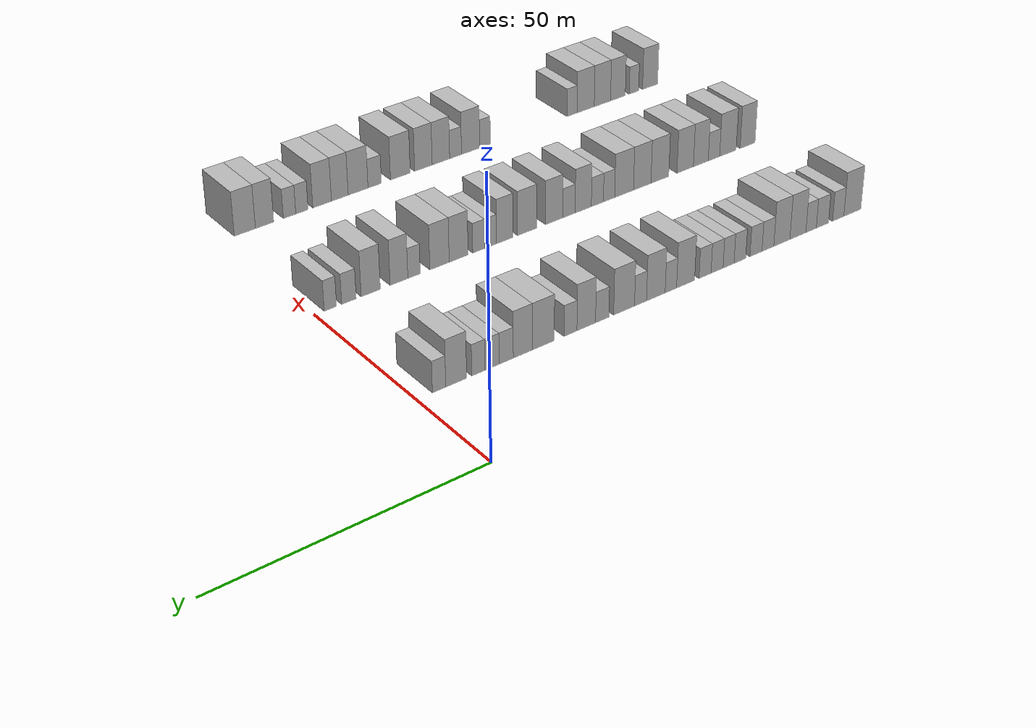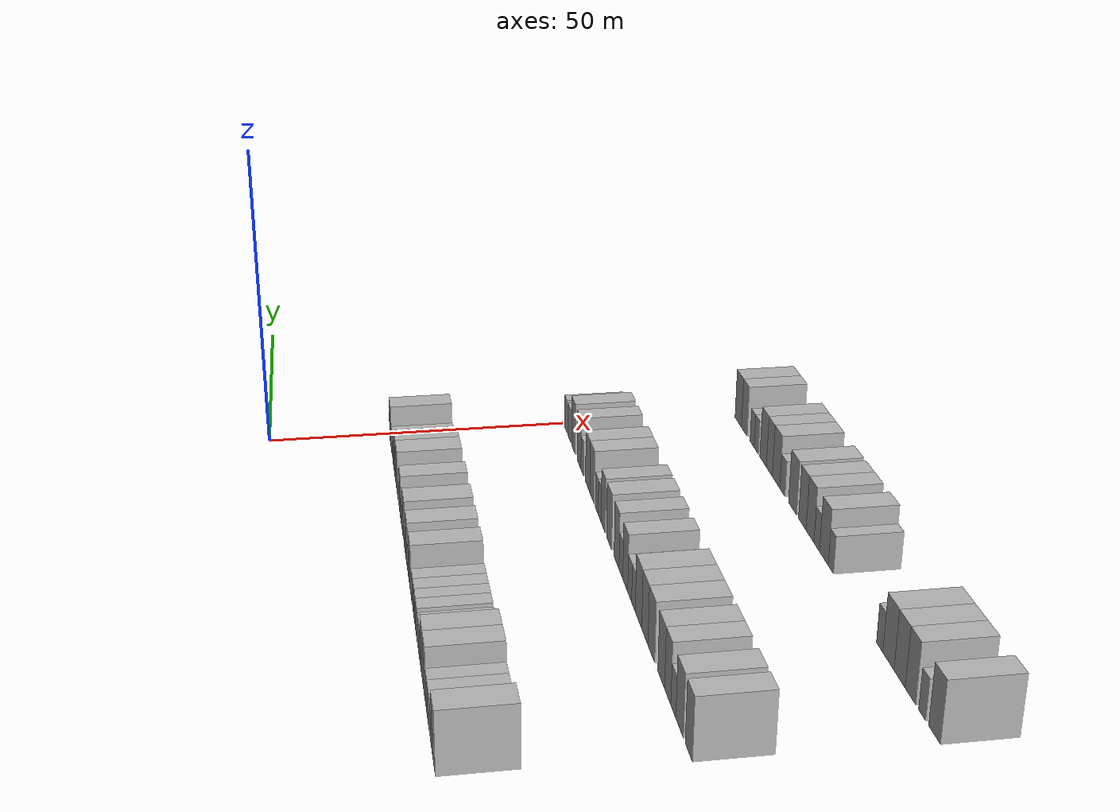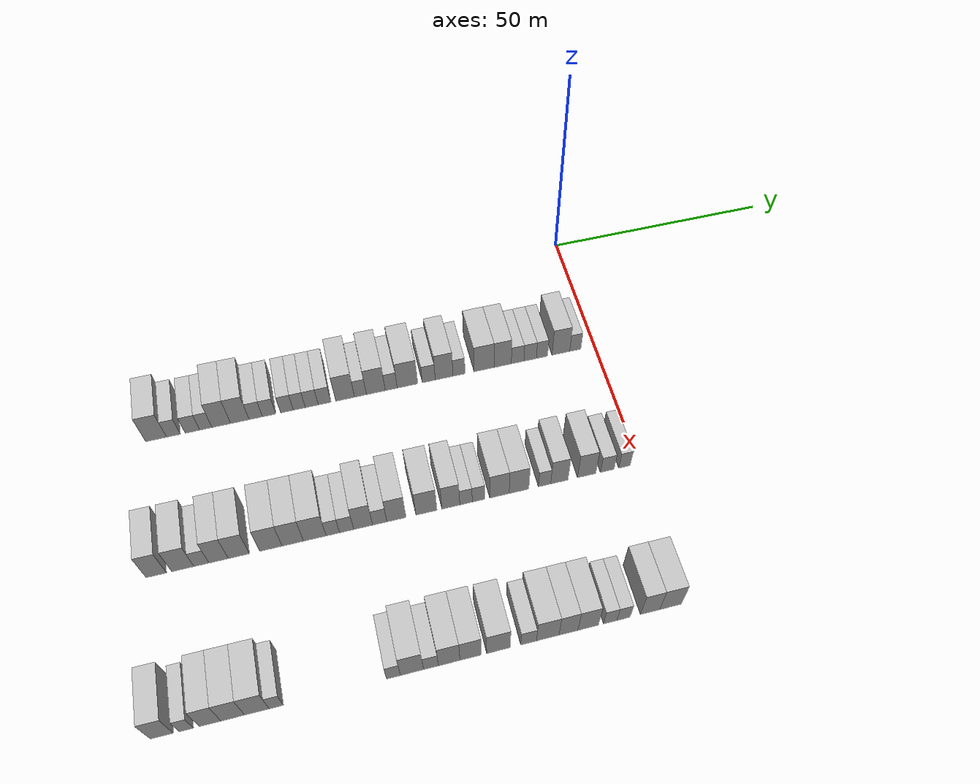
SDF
<sdf version="1.6">
 <world name="default">
  <model name="building_47">
   <static>1</static>
   <pose>25.0000 -94.9390 0 0.000000 0.000000 0.000000</pose>
   <link name="link">
    <pose>0 0 4.50 0 0 0</pose>
    <collision name="collision"><geometry><box><size>10.0000 4.2696 9.0000</size></box></geometry></collision>
    <visual name="visual">
     <cast_shadows>0</cast_shadows>
     <geometry><box><size>10.0000 4.2696 9.0000</size></box></geometry>
     <material>
      <script>
       <uri>model://HANNAS_wall/materials/scripts</uri>
       <uri>model://HANNAS_wall/materials/textures</uri>
       <name>vrc/HANNAS_wall</name>
      </script>
     </material>
    </visual>
   </link>
  </model>
  <model name="building_48">
   <static>1</static>
   <pose>25.0000 -91.4027 0 0.000000 0.000000 0.000000</pose>
   <link name="link">
    <pose>0 0 3.00 0 0 0</pose>
    <collision name="collision"><geometry><box><size>10.0000 2.8029 6.0000</size></box></geometry></collision>
    <visual name="visual">
     <cast_shadows>0</cast_shadows>
     <geometry><box><size>10.0000 2.8029 6.0000</size></box></geometry>
     <material>
      <script>
       <uri>model://HANNAS_wall/materials/scripts</uri>
       <uri>model://HANNAS_wall/materials/textures</uri>
       <name>vrc/HANNAS_wall</name>
      </script>
     </material>
    </visual>
   </link>
  </model>
  <model name="building_49">
   <static>1</static>
   <pose>25.0000 -87.5073 0 0.000000 0.000000 0.000000</pose>
   <link name="link">
    <pose>0 0 3.00 0 0 0</pose>
    <collision name="collision"><geometry><box><size>10.0000 2.9881 6.0000</size></box></geometry></collision>
    <visual name="visual">
     <cast_shadows>0</cast_shadows>
     <geometry><box><size>10.0000 2.9881 6.0000</size></box></geometry>
     <material>
      <script>
       <uri>model://HANNAS_wall/materials/scripts</uri>
       <uri>model://HANNAS_wall/materials/textures</uri>
       <name>vrc/HANNAS_wall</name>
      </script>
     </material>
    </visual>
   </link>
  </model>
  <model name="building_50">
   <static>1</static>
   <pose>25.0000 -84.7459 0 0.000000 0.000000 0.000000</pose>
   <link name="link">
    <pose>0 0 3.00 0 0 0</pose>
    <collision name="collision"><geometry><box><size>10.0000 2.5346 6.0000</size></box></geometry></collision>
    <visual name="visual">
     <cast_shadows>0</cast_shadows>
     <geometry><box><size>10.0000 2.5346 6.0000</size></box></geometry>
     <material>
      <script>
       <uri>model://HANNAS_wall/materials/scripts</uri>
       <uri>model://HANNAS_wall/materials/textures</uri>
       <name>vrc/HANNAS_wall</name>
      </script>
     </material>
    </visual>
   </link>
  </model>
  <model name="building_51">
   <static>1</static>
   <pose>25.0000 -81.5470 0 0.000000 0.000000 0.000000</pose>
   <link name="link">
    <pose>0 0 4.50 0 0 0</pose>
    <collision name="collision"><geometry><box><size>10.0000 3.8632 9.0000</size></box></geometry></collision>
    <visual name="visual">
     <cast_shadows>0</cast_shadows>
     <geometry><box><size>10.0000 3.8632 9.0000</size></box></geometry>
     <material>
      <script>
       <uri>model://HANNAS_wall/materials/scripts</uri>
       <uri>model://HANNAS_wall/materials/textures</uri>
       <name>vrc/HANNAS_wall</name>
      </script>
     </material>
    </visual>
   </link>
  </model>
  <model name="building_52">
   <static>1</static>
   <pose>25.0000 -77.6953 0 0.000000 0.000000 0.000000</pose>
   <link name="link">
    <pose>0 0 4.50 0 0 0</pose>
    <collision name="collision"><geometry><box><size>10.0000 3.8402 9.0000</size></box></geometry></collision>
    <visual name="visual">
     <cast_shadows>0</cast_shadows>
     <geometry><box><size>10.0000 3.8402 9.0000</size></box></geometry>
     <material>
      <script>
       <uri>model://HANNAS_wall/materials/scripts</uri>
       <uri>model://HANNAS_wall/materials/textures</uri>
       <name>vrc/HANNAS_wall</name>
      </script>
     </material>
    </visual>
   </link>
  </model>
  <model name="building_53">
   <static>1</static>
   <pose>25.0000 -74.3730 0 0.000000 0.000000 0.000000</pose>
   <link name="link">
    <pose>0 0 3.00 0 0 0</pose>
    <collision name="collision"><geometry><box><size>10.0000 2.8044 6.0000</size></box></geometry></collision>
    <visual name="visual">
     <cast_shadows>0</cast_shadows>
     <geometry><box><size>10.0000 2.8044 6.0000</size></box></geometry>
     <material>
      <script>
       <uri>model://HANNAS_wall/materials/scripts</uri>
       <uri>model://HANNAS_wall/materials/textures</uri>
       <name>vrc/HANNAS_wall</name>
      </script>
     </material>
    </visual>
   </link>
  </model>
  <model name="building_54">
   <static>1</static>
   <pose>25.0000 -71.5651 0 0.000000 0.000000 0.000000</pose>
   <link name="link">
    <pose>0 0 3.00 0 0 0</pose>
    <collision name="collision"><geometry><box><size>10.0000 2.8114 6.0000</size></box></geometry></collision>
    <visual name="visual">
     <cast_shadows>0</cast_shadows>
     <geometry><box><size>10.0000 2.8114 6.0000</size></box></geometry>
     <material>
      <script>
       <uri>model://HANNAS_wall/materials/scripts</uri>
       <uri>model://HANNAS_wall/materials/textures</uri>
       <name>vrc/HANNAS_wall</name>
      </script>
     </material>
    </visual>
   </link>
  </model>
  <model name="building_55">
   <static>1</static>
   <pose>25.0000 -67.8103 0 0.000000 0.000000 0.000000</pose>
   <link name="link">
    <pose>0 0 3.00 0 0 0</pose>
    <collision name="collision"><geometry><box><size>10.0000 2.6983 6.0000</size></box></geometry></collision>
    <visual name="visual">
     <cast_shadows>0</cast_shadows>
     <geometry><box><size>10.0000 2.6983 6.0000</size></box></geometry>
     <material>
      <script>
       <uri>model://HANNAS_wall/materials/scripts</uri>
       <uri>model://HANNAS_wall/materials/textures</uri>
       <name>vrc/HANNAS_wall</name>
      </script>
     </material>
    </visual>
   </link>
  </model>
  <model name="building_56">
   <static>1</static>
   <pose>25.0000 -65.2031 0 0.000000 0.000000 0.000000</pose>
   <link name="link">
    <pose>0 0 3.00 0 0 0</pose>
    <collision name="collision"><geometry><box><size>10.0000 2.5161 6.0000</size></box></geometry></collision>
    <visual name="visual">
     <cast_shadows>0</cast_shadows>
     <geometry><box><size>10.0000 2.5161 6.0000</size></box></geometry>
     <material>
      <script>
       <uri>model://HANNAS_wall/materials/scripts</uri>
       <uri>model://HANNAS_wall/materials/textures</uri>
       <name>vrc/HANNAS_wall</name>
      </script>
     </material>
    </visual>
   </link>
  </model>
  <model name="building_57">
   <static>1</static>
   <pose>25.0000 -62.5672 0 0.000000 0.000000 0.000000</pose>
   <link name="link">
    <pose>0 0 3.00 0 0 0</pose>
    <collision name="collision"><geometry><box><size>10.0000 2.7556 6.0000</size></box></geometry></collision>
    <visual name="visual">
     <cast_shadows>0</cast_shadows>
     <geometry><box><size>10.0000 2.7556 6.0000</size></box></geometry>
     <material>
      <script>
       <uri>model://HANNAS_wall/materials/scripts</uri>
       <uri>model://HANNAS_wall/materials/textures</uri>
       <name>vrc/HANNAS_wall</name>
      </script>
     </material>
    </visual>
   </link>
  </model>
  <model name="building_58">
   <static>1</static>
   <pose>25.0000 -59.8248 0 0.000000 0.000000 0.000000</pose>
   <link name="link">
    <pose>0 0 3.00 0 0 0</pose>
    <collision name="collision"><geometry><box><size>10.0000 2.7292 6.0000</size></box></geometry></collision>
    <visual name="visual">
     <cast_shadows>0</cast_shadows>
     <geometry><box><size>10.0000 2.7292 6.0000</size></box></geometry>
     <material>
      <script>
       <uri>model://HANNAS_wall/materials/scripts</uri>
       <uri>model://HANNAS_wall/materials/textures</uri>
       <name>vrc/HANNAS_wall</name>
      </script>
     </material>
    </visual>
   </link>
  </model>
  <model name="building_59">
   <static>1</static>
   <pose>25.0000 -55.4433 0 0.000000 0.000000 0.000000</pose>
   <link name="link">
    <pose>0 0 4.50 0 0 0</pose>
    <collision name="collision"><geometry><box><size>10.0000 4.0337 9.0000</size></box></geometry></collision>
    <visual name="visual">
     <cast_shadows>0</cast_shadows>
     <geometry><box><size>10.0000 4.0337 9.0000</size></box></geometry>
     <material>
      <script>
       <uri>model://HANNAS_wall/materials/scripts</uri>
       <uri>model://HANNAS_wall/materials/textures</uri>
       <name>vrc/HANNAS_wall</name>
      </script>
     </material>
    </visual>
   </link>
  </model>
  <model name="building_60">
   <static>1</static>
   <pose>25.0000 -52.1567 0 0.000000 0.000000 0.000000</pose>
   <link name="link">
    <pose>0 0 3.00 0 0 0</pose>
    <collision name="collision"><geometry><box><size>10.0000 2.5395 6.0000</size></box></geometry></collision>
    <visual name="visual">
     <cast_shadows>0</cast_shadows>
     <geometry><box><size>10.0000 2.5395 6.0000</size></box></geometry>
     <material>
      <script>
       <uri>model://HANNAS_wall/materials/scripts</uri>
       <uri>model://HANNAS_wall/materials/textures</uri>
       <name>vrc/HANNAS_wall</name>
      </script>
     </material>
    </visual>
   </link>
  </model>
  <model name="building_61">
   <static>1</static>
   <pose>25.0000 -48.8417 0 0.000000 0.000000 0.000000</pose>
   <link name="link">
    <pose>0 0 4.50 0 0 0</pose>
    <collision name="collision"><geometry><box><size>10.0000 4.0907 9.0000</size></box></geometry></collision>
    <visual name="visual">
     <cast_shadows>0</cast_shadows>
     <geometry><box><size>10.0000 4.0907 9.0000</size></box></geometry>
     <material>
      <script>
       <uri>model://HANNAS_wall/materials/scripts</uri>
       <uri>model://HANNAS_wall/materials/textures</uri>
       <name>vrc/HANNAS_wall</name>
      </script>
     </material>
    </visual>
   </link>
  </model>
  <model name="building_62">
   <static>1</static>
   <pose>25.0000 -45.4941 0 0.000000 0.000000 0.000000</pose>
   <link name="link">
    <pose>0 0 3.00 0 0 0</pose>
    <collision name="collision"><geometry><box><size>10.0000 2.6045 6.0000</size></box></geometry></collision>
    <visual name="visual">
     <cast_shadows>0</cast_shadows>
     <geometry><box><size>10.0000 2.6045 6.0000</size></box></geometry>
     <material>
      <script>
       <uri>model://HANNAS_wall/materials/scripts</uri>
       <uri>model://HANNAS_wall/materials/textures</uri>
       <name>vrc/HANNAS_wall</name>
      </script>
     </material>
    </visual>
   </link>
  </model>
  <model name="building_63">
   <static>1</static>
   <pose>25.0000 -41.9494 0 0.000000 0.000000 0.000000</pose>
   <link name="link">
    <pose>0 0 4.50 0 0 0</pose>
    <collision name="collision"><geometry><box><size>10.0000 4.4850 9.0000</size></box></geometry></collision>
    <visual name="visual">
     <cast_shadows>0</cast_shadows>
     <geometry><box><size>10.0000 4.4850 9.0000</size></box></geometry>
     <material>
      <script>
       <uri>model://HANNAS_wall/materials/scripts</uri>
       <uri>model://HANNAS_wall/materials/textures</uri>
       <name>vrc/HANNAS_wall</name>
      </script>
     </material>
    </visual>
   </link>
  </model>
  <model name="building_64">
   <static>1</static>
   <pose>25.0000 -37.2859 0 0.000000 0.000000 0.000000</pose>
   <link name="link">
    <pose>0 0 3.00 0 0 0</pose>
    <collision name="collision"><geometry><box><size>10.0000 2.8420 6.0000</size></box></geometry></collision>
    <visual name="visual">
     <cast_shadows>0</cast_shadows>
     <geometry><box><size>10.0000 2.8420 6.0000</size></box></geometry>
     <material>
      <script>
       <uri>model://HANNAS_wall/materials/scripts</uri>
       <uri>model://HANNAS_wall/materials/textures</uri>
       <name>vrc/HANNAS_wall</name>
      </script>
     </material>
    </visual>
   </link>
  </model>
  <model name="building_65">
   <static>1</static>
   <pose>25.0000 -33.9114 0 0.000000 0.000000 0.000000</pose>
   <link name="link">
    <pose>0 0 4.50 0 0 0</pose>
    <collision name="collision"><geometry><box><size>10.0000 3.9071 9.0000</size></box></geometry></collision>
    <visual name="visual">
     <cast_shadows>0</cast_shadows>
     <geometry><box><size>10.0000 3.9071 9.0000</size></box></geometry>
     <material>
      <script>
       <uri>model://HANNAS_wall/materials/scripts</uri>
       <uri>model://HANNAS_wall/materials/textures</uri>
       <name>vrc/HANNAS_wall</name>
      </script>
     </material>
    </visual>
   </link>
  </model>
  <model name="building_66">
   <static>1</static>
   <pose>25.0000 -30.6183 0 0.000000 0.000000 0.000000</pose>
   <link name="link">
    <pose>0 0 3.00 0 0 0</pose>
    <collision name="collision"><geometry><box><size>10.0000 2.6790 6.0000</size></box></geometry></collision>
    <visual name="visual">
     <cast_shadows>0</cast_shadows>
     <geometry><box><size>10.0000 2.6790 6.0000</size></box></geometry>
     <material>
      <script>
       <uri>model://HANNAS_wall/materials/scripts</uri>
       <uri>model://HANNAS_wall/materials/textures</uri>
       <name>vrc/HANNAS_wall</name>
      </script>
     </material>
    </visual>
   </link>
  </model>
  <model name="building_67">
   <static>1</static>
   <pose>25.0000 -25.0356 0 0.000000 0.000000 0.000000</pose>
   <link name="link">
    <pose>0 0 4.50 0 0 0</pose>
    <collision name="collision"><geometry><box><size>10.0000 4.4864 9.0000</size></box></geometry></collision>
    <visual name="visual">
     <cast_shadows>0</cast_shadows>
     <geometry><box><size>10.0000 4.4864 9.0000</size></box></geometry>
     <material>
      <script>
       <uri>model://HANNAS_wall/materials/scripts</uri>
       <uri>model://HANNAS_wall/materials/textures</uri>
       <name>vrc/HANNAS_wall</name>
      </script>
     </material>
    </visual>
   </link>
  </model>
  <model name="building_68">
   <static>1</static>
   <pose>25.0000 -20.8722 0 0.000000 0.000000 0.000000</pose>
   <link name="link">
    <pose>0 0 4.50 0 0 0</pose>
    <collision name="collision"><geometry><box><size>10.0000 3.8405 9.0000</size></box></geometry></collision>
    <visual name="visual">
     <cast_shadows>0</cast_shadows>
     <geometry><box><size>10.0000 3.8405 9.0000</size></box></geometry>
     <material>
      <script>
       <uri>model://HANNAS_wall/materials/scripts</uri>
       <uri>model://HANNAS_wall/materials/textures</uri>
       <name>vrc/HANNAS_wall</name>
      </script>
     </material>
    </visual>
   </link>
  </model>
  <model name="building_69">
   <static>1</static>
   <pose>25.0000 -17.5366 0 0.000000 0.000000 0.000000</pose>
   <link name="link">
    <pose>0 0 3.00 0 0 0</pose>
    <collision name="collision"><geometry><box><size>10.0000 2.8307 6.0000</size></box></geometry></collision>
    <visual name="visual">
     <cast_shadows>0</cast_shadows>
     <geometry><box><size>10.0000 2.8307 6.0000</size></box></geometry>
     <material>
      <script>
       <uri>model://HANNAS_wall/materials/scripts</uri>
       <uri>model://HANNAS_wall/materials/textures</uri>
       <name>vrc/HANNAS_wall</name>
      </script>
     </material>
    </visual>
   </link>
  </model>
  <model name="building_70">
   <static>1</static>
   <pose>25.0000 -14.7072 0 0.000000 0.000000 0.000000</pose>
   <link name="link">
    <pose>0 0 3.00 0 0 0</pose>
    <collision name="collision"><geometry><box><size>10.0000 2.8281 6.0000</size></box></geometry></collision>
    <visual name="visual">
     <cast_shadows>0</cast_shadows>
     <geometry><box><size>10.0000 2.8281 6.0000</size></box></geometry>
     <material>
      <script>
       <uri>model://HANNAS_wall/materials/scripts</uri>
       <uri>model://HANNAS_wall/materials/textures</uri>
       <name>vrc/HANNAS_wall</name>
      </script>
     </material>
    </visual>
   </link>
  </model>
  <model name="building_71">
   <static>1</static>
   <pose>25.0000 -12.0141 0 0.000000 0.000000 0.000000</pose>
   <link name="link">
    <pose>0 0 3.00 0 0 0</pose>
    <collision name="collision"><geometry><box><size>10.0000 2.5581 6.0000</size></box></geometry></collision>
    <visual name="visual">
     <cast_shadows>0</cast_shadows>
     <geometry><box><size>10.0000 2.5581 6.0000</size></box></geometry>
     <material>
      <script>
       <uri>model://HANNAS_wall/materials/scripts</uri>
       <uri>model://HANNAS_wall/materials/textures</uri>
       <name>vrc/HANNAS_wall</name>
      </script>
     </material>
    </visual>
   </link>
  </model>
  <model name="building_72">
   <static>1</static>
   <pose>25.0000 -7.7158 0 0.000000 0.000000 0.000000</pose>
   <link name="link">
    <pose>0 0 4.50 0 0 0</pose>
    <collision name="collision"><geometry><box><size>10.0000 4.0384 9.0000</size></box></geometry></collision>
    <visual name="visual">
     <cast_shadows>0</cast_shadows>
     <geometry><box><size>10.0000 4.0384 9.0000</size></box></geometry>
     <material>
      <script>
       <uri>model://HANNAS_wall/materials/scripts</uri>
       <uri>model://HANNAS_wall/materials/textures</uri>
       <name>vrc/HANNAS_wall</name>
      </script>
     </material>
    </visual>
   </link>
  </model>
  <model name="building_73">
   <static>1</static>
   <pose>25.0000 -4.4185 0 0.000000 0.000000 0.000000</pose>
   <link name="link">
    <pose>0 0 3.00 0 0 0</pose>
    <collision name="collision"><geometry><box><size>10.0000 2.5562 6.0000</size></box></geometry></collision>
    <visual name="visual">
     <cast_shadows>0</cast_shadows>
     <geometry><box><size>10.0000 2.5562 6.0000</size></box></geometry>
     <material>
      <script>
       <uri>model://HANNAS_wall/materials/scripts</uri>
       <uri>model://HANNAS_wall/materials/textures</uri>
       <name>vrc/HANNAS_wall</name>
      </script>
     </material>
    </visual>
   </link>
  </model>
  <model name="building_187">
   <static>1</static>
   <pose>55.0000 -96.7728 0 0.000000 0.000000 0.000000</pose>
   <link name="link">
    <pose>0 0 4.50 0 0 0</pose>
    <collision name="collision"><geometry><box><size>10.0000 3.8087 9.0000</size></box></geometry></collision>
    <visual name="visual">
     <cast_shadows>0</cast_shadows>
     <geometry><box><size>10.0000 3.8087 9.0000</size></box></geometry>
     <material>
      <script>
       <uri>model://HANNAS_wall/materials/scripts</uri>
       <uri>model://HANNAS_wall/materials/textures</uri>
       <name>vrc/HANNAS_wall</name>
      </script>
     </material>
    </visual>
   </link>
  </model>
  <model name="building_188">
   <static>1</static>
   <pose>55.0000 -91.7781 0 0.000000 0.000000 0.000000</pose>
   <link name="link">
    <pose>0 0 4.50 0 0 0</pose>
    <collision name="collision"><geometry><box><size>10.0000 4.1807 9.0000</size></box></geometry></collision>
    <visual name="visual">
     <cast_shadows>0</cast_shadows>
     <geometry><box><size>10.0000 4.1807 9.0000</size></box></geometry>
     <material>
      <script>
       <uri>model://HANNAS_wall/materials/scripts</uri>
       <uri>model://HANNAS_wall/materials/textures</uri>
       <name>vrc/HANNAS_wall</name>
      </script>
     </material>
    </visual>
   </link>
  </model>
  <model name="building_189">
   <static>1</static>
   <pose>55.0000 -88.2625 0 0.000000 0.000000 0.000000</pose>
   <link name="link">
    <pose>0 0 3.00 0 0 0</pose>
    <collision name="collision"><geometry><box><size>10.0000 2.8504 6.0000</size></box></geometry></collision>
    <visual name="visual">
     <cast_shadows>0</cast_shadows>
     <geometry><box><size>10.0000 2.8504 6.0000</size></box></geometry>
     <material>
      <script>
       <uri>model://HANNAS_wall/materials/scripts</uri>
       <uri>model://HANNAS_wall/materials/textures</uri>
       <name>vrc/HANNAS_wall</name>
      </script>
     </material>
    </visual>
   </link>
  </model>
  <model name="building_190">
   <static>1</static>
   <pose>55.0000 -85.0004 0 0.000000 0.000000 0.000000</pose>
   <link name="link">
    <pose>0 0 4.50 0 0 0</pose>
    <collision name="collision"><geometry><box><size>10.0000 3.6738 9.0000</size></box></geometry></collision>
    <visual name="visual">
     <cast_shadows>0</cast_shadows>
     <geometry><box><size>10.0000 3.6738 9.0000</size></box></geometry>
     <material>
      <script>
       <uri>model://HANNAS_wall/materials/scripts</uri>
       <uri>model://HANNAS_wall/materials/textures</uri>
       <name>vrc/HANNAS_wall</name>
      </script>
     </material>
    </visual>
   </link>
  </model>
  <model name="building_191">
   <static>1</static>
   <pose>55.0000 -81.1520 0 0.000000 0.000000 0.000000</pose>
   <link name="link">
    <pose>0 0 4.50 0 0 0</pose>
    <collision name="collision"><geometry><box><size>10.0000 4.0231 9.0000</size></box></geometry></collision>
    <visual name="visual">
     <cast_shadows>0</cast_shadows>
     <geometry><box><size>10.0000 4.0231 9.0000</size></box></geometry>
     <material>
      <script>
       <uri>model://HANNAS_wall/materials/scripts</uri>
       <uri>model://HANNAS_wall/materials/textures</uri>
       <name>vrc/HANNAS_wall</name>
      </script>
     </material>
    </visual>
   </link>
  </model>
  <model name="building_192">
   <static>1</static>
   <pose>55.0000 -74.9863 0 0.000000 0.000000 0.000000</pose>
   <link name="link">
    <pose>0 0 4.50 0 0 0</pose>
    <collision name="collision"><geometry><box><size>10.0000 4.3082 9.0000</size></box></geometry></collision>
    <visual name="visual">
     <cast_shadows>0</cast_shadows>
     <geometry><box><size>10.0000 4.3082 9.0000</size></box></geometry>
     <material>
      <script>
       <uri>model://HANNAS_wall/materials/scripts</uri>
       <uri>model://HANNAS_wall/materials/textures</uri>
       <name>vrc/HANNAS_wall</name>
      </script>
     </material>
    </visual>
   </link>
  </model>
  <model name="building_193">
   <static>1</static>
   <pose>55.0000 -70.7495 0 0.000000 0.000000 0.000000</pose>
   <link name="link">
    <pose>0 0 4.50 0 0 0</pose>
    <collision name="collision"><geometry><box><size>10.0000 4.1654 9.0000</size></box></geometry></collision>
    <visual name="visual">
     <cast_shadows>0</cast_shadows>
     <geometry><box><size>10.0000 4.1654 9.0000</size></box></geometry>
     <material>
      <script>
       <uri>model://HANNAS_wall/materials/scripts</uri>
       <uri>model://HANNAS_wall/materials/textures</uri>
       <name>vrc/HANNAS_wall</name>
      </script>
     </material>
    </visual>
   </link>
  </model>
  <model name="building_194">
   <static>1</static>
   <pose>55.0000 -66.4518 0 0.000000 0.000000 0.000000</pose>
   <link name="link">
    <pose>0 0 4.50 0 0 0</pose>
    <collision name="collision"><geometry><box><size>10.0000 4.4302 9.0000</size></box></geometry></collision>
    <visual name="visual">
     <cast_shadows>0</cast_shadows>
     <geometry><box><size>10.0000 4.4302 9.0000</size></box></geometry>
     <material>
      <script>
       <uri>model://HANNAS_wall/materials/scripts</uri>
       <uri>model://HANNAS_wall/materials/textures</uri>
       <name>vrc/HANNAS_wall</name>
      </script>
     </material>
    </visual>
   </link>
  </model>
  <model name="building_195">
   <static>1</static>
   <pose>55.0000 -62.9214 0 0.000000 0.000000 0.000000</pose>
   <link name="link">
    <pose>0 0 3.00 0 0 0</pose>
    <collision name="collision"><geometry><box><size>10.0000 2.6306 6.0000</size></box></geometry></collision>
    <visual name="visual">
     <cast_shadows>0</cast_shadows>
     <geometry><box><size>10.0000 2.6306 6.0000</size></box></geometry>
     <material>
      <script>
       <uri>model://HANNAS_wall/materials/scripts</uri>
       <uri>model://HANNAS_wall/materials/textures</uri>
       <name>vrc/HANNAS_wall</name>
      </script>
     </material>
    </visual>
   </link>
  </model>
  <model name="building_196">
   <static>1</static>
   <pose>55.0000 -60.2068 0 0.000000 0.000000 0.000000</pose>
   <link name="link">
    <pose>0 0 3.00 0 0 0</pose>
    <collision name="collision"><geometry><box><size>10.0000 2.7985 6.0000</size></box></geometry></collision>
    <visual name="visual">
     <cast_shadows>0</cast_shadows>
     <geometry><box><size>10.0000 2.7985 6.0000</size></box></geometry>
     <material>
      <script>
       <uri>model://HANNAS_wall/materials/scripts</uri>
       <uri>model://HANNAS_wall/materials/textures</uri>
       <name>vrc/HANNAS_wall</name>
      </script>
     </material>
    </visual>
   </link>
  </model>
  <model name="building_197">
   <static>1</static>
   <pose>55.0000 -56.9499 0 0.000000 0.000000 0.000000</pose>
   <link name="link">
    <pose>0 0 4.50 0 0 0</pose>
    <collision name="collision"><geometry><box><size>10.0000 3.7154 9.0000</size></box></geometry></collision>
    <visual name="visual">
     <cast_shadows>0</cast_shadows>
     <geometry><box><size>10.0000 3.7154 9.0000</size></box></geometry>
     <material>
      <script>
       <uri>model://HANNAS_wall/materials/scripts</uri>
       <uri>model://HANNAS_wall/materials/textures</uri>
       <name>vrc/HANNAS_wall</name>
      </script>
     </material>
    </visual>
   </link>
  </model>
  <model name="building_198">
   <static>1</static>
   <pose>55.0000 -53.6675 0 0.000000 0.000000 0.000000</pose>
   <link name="link">
    <pose>0 0 3.00 0 0 0</pose>
    <collision name="collision"><geometry><box><size>10.0000 2.8494 6.0000</size></box></geometry></collision>
    <visual name="visual">
     <cast_shadows>0</cast_shadows>
     <geometry><box><size>10.0000 2.8494 6.0000</size></box></geometry>
     <material>
      <script>
       <uri>model://HANNAS_wall/materials/scripts</uri>
       <uri>model://HANNAS_wall/materials/textures</uri>
       <name>vrc/HANNAS_wall</name>
      </script>
     </material>
    </visual>
   </link>
  </model>
  <model name="building_199">
   <static>1</static>
   <pose>55.0000 -50.3316 0 0.000000 0.000000 0.000000</pose>
   <link name="link">
    <pose>0 0 4.50 0 0 0</pose>
    <collision name="collision"><geometry><box><size>10.0000 3.8224 9.0000</size></box></geometry></collision>
    <visual name="visual">
     <cast_shadows>0</cast_shadows>
     <geometry><box><size>10.0000 3.8224 9.0000</size></box></geometry>
     <material>
      <script>
       <uri>model://HANNAS_wall/materials/scripts</uri>
       <uri>model://HANNAS_wall/materials/textures</uri>
       <name>vrc/HANNAS_wall</name>
      </script>
     </material>
    </visual>
   </link>
  </model>
  <model name="building_200">
   <static>1</static>
   <pose>55.0000 -44.3027 0 0.000000 0.000000 0.000000</pose>
   <link name="link">
    <pose>0 0 4.50 0 0 0</pose>
    <collision name="collision"><geometry><box><size>10.0000 4.2353 9.0000</size></box></geometry></collision>
    <visual name="visual">
     <cast_shadows>0</cast_shadows>
     <geometry><box><size>10.0000 4.2353 9.0000</size></box></geometry>
     <material>
      <script>
       <uri>model://HANNAS_wall/materials/scripts</uri>
       <uri>model://HANNAS_wall/materials/textures</uri>
       <name>vrc/HANNAS_wall</name>
      </script>
     </material>
    </visual>
   </link>
  </model>
  <model name="building_201">
   <static>1</static>
   <pose>55.0000 -39.3706 0 0.000000 0.000000 0.000000</pose>
   <link name="link">
    <pose>0 0 4.50 0 0 0</pose>
    <collision name="collision"><geometry><box><size>10.0000 3.6289 9.0000</size></box></geometry></collision>
    <visual name="visual">
     <cast_shadows>0</cast_shadows>
     <geometry><box><size>10.0000 3.6289 9.0000</size></box></geometry>
     <material>
      <script>
       <uri>model://HANNAS_wall/materials/scripts</uri>
       <uri>model://HANNAS_wall/materials/textures</uri>
       <name>vrc/HANNAS_wall</name>
      </script>
     </material>
    </visual>
   </link>
  </model>
  <model name="building_202">
   <static>1</static>
   <pose>55.0000 -36.2868 0 0.000000 0.000000 0.000000</pose>
   <link name="link">
    <pose>0 0 3.00 0 0 0</pose>
    <collision name="collision"><geometry><box><size>10.0000 2.5387 6.0000</size></box></geometry></collision>
    <visual name="visual">
     <cast_shadows>0</cast_shadows>
     <geometry><box><size>10.0000 2.5387 6.0000</size></box></geometry>
     <material>
      <script>
       <uri>model://HANNAS_wall/materials/scripts</uri>
       <uri>model://HANNAS_wall/materials/textures</uri>
       <name>vrc/HANNAS_wall</name>
      </script>
     </material>
    </visual>
   </link>
  </model>
  <model name="building_203">
   <static>1</static>
   <pose>55.0000 -33.7313 0 0.000000 0.000000 0.000000</pose>
   <link name="link">
    <pose>0 0 3.00 0 0 0</pose>
    <collision name="collision"><geometry><box><size>10.0000 2.5722 6.0000</size></box></geometry></collision>
    <visual name="visual">
     <cast_shadows>0</cast_shadows>
     <geometry><box><size>10.0000 2.5722 6.0000</size></box></geometry>
     <material>
      <script>
       <uri>model://HANNAS_wall/materials/scripts</uri>
       <uri>model://HANNAS_wall/materials/textures</uri>
       <name>vrc/HANNAS_wall</name>
      </script>
     </material>
    </visual>
   </link>
  </model>
  <model name="building_204">
   <static>1</static>
   <pose>55.0000 -29.4409 0 0.000000 0.000000 0.000000</pose>
   <link name="link">
    <pose>0 0 4.50 0 0 0</pose>
    <collision name="collision"><geometry><box><size>10.0000 4.0086 9.0000</size></box></geometry></collision>
    <visual name="visual">
     <cast_shadows>0</cast_shadows>
     <geometry><box><size>10.0000 4.0086 9.0000</size></box></geometry>
     <material>
      <script>
       <uri>model://HANNAS_wall/materials/scripts</uri>
       <uri>model://HANNAS_wall/materials/textures</uri>
       <name>vrc/HANNAS_wall</name>
      </script>
     </material>
    </visual>
   </link>
  </model>
  <model name="building_205">
   <static>1</static>
   <pose>55.0000 -25.4037 0 0.000000 0.000000 0.000000</pose>
   <link name="link">
    <pose>0 0 4.50 0 0 0</pose>
    <collision name="collision"><geometry><box><size>10.0000 4.0658 9.0000</size></box></geometry></collision>
    <visual name="visual">
     <cast_shadows>0</cast_shadows>
     <geometry><box><size>10.0000 4.0658 9.0000</size></box></geometry>
     <material>
      <script>
       <uri>model://HANNAS_wall/materials/scripts</uri>
       <uri>model://HANNAS_wall/materials/textures</uri>
       <name>vrc/HANNAS_wall</name>
      </script>
     </material>
    </visual>
   </link>
  </model>
  <model name="building_206">
   <static>1</static>
   <pose>55.0000 -20.0923 0 0.000000 0.000000 0.000000</pose>
   <link name="link">
    <pose>0 0 3.00 0 0 0</pose>
    <collision name="collision"><geometry><box><size>10.0000 2.5571 6.0000</size></box></geometry></collision>
    <visual name="visual">
     <cast_shadows>0</cast_shadows>
     <geometry><box><size>10.0000 2.5571 6.0000</size></box></geometry>
     <material>
      <script>
       <uri>model://HANNAS_wall/materials/scripts</uri>
       <uri>model://HANNAS_wall/materials/textures</uri>
       <name>vrc/HANNAS_wall</name>
      </script>
     </material>
    </visual>
   </link>
  </model>
  <model name="building_207">
   <static>1</static>
   <pose>55.0000 -16.9954 0 0.000000 0.000000 0.000000</pose>
   <link name="link">
    <pose>0 0 4.50 0 0 0</pose>
    <collision name="collision"><geometry><box><size>10.0000 3.6367 9.0000</size></box></geometry></collision>
    <visual name="visual">
     <cast_shadows>0</cast_shadows>
     <geometry><box><size>10.0000 3.6367 9.0000</size></box></geometry>
     <material>
      <script>
       <uri>model://HANNAS_wall/materials/scripts</uri>
       <uri>model://HANNAS_wall/materials/textures</uri>
       <name>vrc/HANNAS_wall</name>
      </script>
     </material>
    </visual>
   </link>
  </model>
  <model name="building_208">
   <static>1</static>
   <pose>55.0000 -11.2510 0 0.000000 0.000000 0.000000</pose>
   <link name="link">
    <pose>0 0 4.50 0 0 0</pose>
    <collision name="collision"><geometry><box><size>10.0000 3.8520 9.0000</size></box></geometry></collision>
    <visual name="visual">
     <cast_shadows>0</cast_shadows>
     <geometry><box><size>10.0000 3.8520 9.0000</size></box></geometry>
     <material>
      <script>
       <uri>model://HANNAS_wall/materials/scripts</uri>
       <uri>model://HANNAS_wall/materials/textures</uri>
       <name>vrc/HANNAS_wall</name>
      </script>
     </material>
    </visual>
   </link>
  </model>
  <model name="building_209">
   <static>1</static>
   <pose>55.0000 -6.8799 0 0.000000 0.000000 0.000000</pose>
   <link name="link">
    <pose>0 0 3.00 0 0 0</pose>
    <collision name="collision"><geometry><box><size>10.0000 2.8902 6.0000</size></box></geometry></collision>
    <visual name="visual">
     <cast_shadows>0</cast_shadows>
     <geometry><box><size>10.0000 2.8902 6.0000</size></box></geometry>
     <material>
      <script>
       <uri>model://HANNAS_wall/materials/scripts</uri>
       <uri>model://HANNAS_wall/materials/textures</uri>
       <name>vrc/HANNAS_wall</name>
      </script>
     </material>
    </visual>
   </link>
  </model>
  <model name="building_210">
   <static>1</static>
   <pose>55.0000 -3.2157 0 0.000000 0.000000 0.000000</pose>
   <link name="link">
    <pose>0 0 3.00 0 0 0</pose>
    <collision name="collision"><geometry><box><size>10.0000 2.4381 6.0000</size></box></geometry></collision>
    <visual name="visual">
     <cast_shadows>0</cast_shadows>
     <geometry><box><size>10.0000 2.4381 6.0000</size></box></geometry>
     <material>
      <script>
       <uri>model://HANNAS_wall/materials/scripts</uri>
       <uri>model://HANNAS_wall/materials/textures</uri>
       <name>vrc/HANNAS_wall</name>
      </script>
     </material>
    </visual>
   </link>
  </model>
  <model name="building_335">
   <static>1</static>
   <pose>85.0000 -97.6807 0 0.000000 0.000000 0.000000</pose>
   <link name="link">
    <pose>0 0 4.50 0 0 0</pose>
    <collision name="collision"><geometry><box><size>10.0000 3.9287 9.0000</size></box></geometry></collision>
    <visual name="visual">
     <cast_shadows>0</cast_shadows>
     <geometry><box><size>10.0000 3.9287 9.0000</size></box></geometry>
     <material>
      <script>
       <uri>model://HANNAS_wall/materials/scripts</uri>
       <uri>model://HANNAS_wall/materials/textures</uri>
       <name>vrc/HANNAS_wall</name>
      </script>
     </material>
    </visual>
   </link>
  </model>
  <model name="building_336">
   <static>1</static>
   <pose>85.0000 -93.4937 0 0.000000 0.000000 0.000000</pose>
   <link name="link">
    <pose>0 0 3.00 0 0 0</pose>
    <collision name="collision"><geometry><box><size>10.0000 2.4454 6.0000</size></box></geometry></collision>
    <visual name="visual">
     <cast_shadows>0</cast_shadows>
     <geometry><box><size>10.0000 2.4454 6.0000</size></box></geometry>
     <material>
      <script>
       <uri>model://HANNAS_wall/materials/scripts</uri>
       <uri>model://HANNAS_wall/materials/textures</uri>
       <name>vrc/HANNAS_wall</name>
      </script>
     </material>
    </visual>
   </link>
  </model>
  <model name="building_337">
   <static>1</static>
   <pose>85.0000 -89.3865 0 0.000000 0.000000 0.000000</pose>
   <link name="link">
    <pose>0 0 4.50 0 0 0</pose>
    <collision name="collision"><geometry><box><size>10.0000 3.7689 9.0000</size></box></geometry></collision>
    <visual name="visual">
     <cast_shadows>0</cast_shadows>
     <geometry><box><size>10.0000 3.7689 9.0000</size></box></geometry>
     <material>
      <script>
       <uri>model://HANNAS_wall/materials/scripts</uri>
       <uri>model://HANNAS_wall/materials/textures</uri>
       <name>vrc/HANNAS_wall</name>
      </script>
     </material>
    </visual>
   </link>
  </model>
  <model name="building_338">
   <static>1</static>
   <pose>85.0000 -85.4393 0 0.000000 0.000000 0.000000</pose>
   <link name="link">
    <pose>0 0 4.50 0 0 0</pose>
    <collision name="collision"><geometry><box><size>10.0000 4.1256 9.0000</size></box></geometry></collision>
    <visual name="visual">
     <cast_shadows>0</cast_shadows>
     <geometry><box><size>10.0000 4.1256 9.0000</size></box></geometry>
     <material>
      <script>
       <uri>model://HANNAS_wall/materials/scripts</uri>
       <uri>model://HANNAS_wall/materials/textures</uri>
       <name>vrc/HANNAS_wall</name>
      </script>
     </material>
    </visual>
   </link>
  </model>
  <model name="building_339">
   <static>1</static>
   <pose>85.0000 -81.2368 0 0.000000 0.000000 0.000000</pose>
   <link name="link">
    <pose>0 0 4.50 0 0 0</pose>
    <collision name="collision"><geometry><box><size>10.0000 4.2793 9.0000</size></box></geometry></collision>
    <visual name="visual">
     <cast_shadows>0</cast_shadows>
     <geometry><box><size>10.0000 4.2793 9.0000</size></box></geometry>
     <material>
      <script>
       <uri>model://HANNAS_wall/materials/scripts</uri>
       <uri>model://HANNAS_wall/materials/textures</uri>
       <name>vrc/HANNAS_wall</name>
      </script>
     </material>
    </visual>
   </link>
  </model>
  <model name="building_340">
   <static>1</static>
   <pose>85.0000 -77.8476 0 0.000000 0.000000 0.000000</pose>
   <link name="link">
    <pose>0 0 3.00 0 0 0</pose>
    <collision name="collision"><geometry><box><size>10.0000 2.4991 6.0000</size></box></geometry></collision>
    <visual name="visual">
     <cast_shadows>0</cast_shadows>
     <geometry><box><size>10.0000 2.4991 6.0000</size></box></geometry>
     <material>
      <script>
       <uri>model://HANNAS_wall/materials/scripts</uri>
       <uri>model://HANNAS_wall/materials/textures</uri>
       <name>vrc/HANNAS_wall</name>
      </script>
     </material>
    </visual>
   </link>
  </model>
  <model name="building_341">
   <static>1</static>
   <pose>85.0000 -56.8284 0 0.000000 0.000000 0.000000</pose>
   <link name="link">
    <pose>0 0 3.00 0 0 0</pose>
    <collision name="collision"><geometry><box><size>10.0000 2.5131 6.0000</size></box></geometry></collision>
    <visual name="visual">
     <cast_shadows>0</cast_shadows>
     <geometry><box><size>10.0000 2.5131 6.0000</size></box></geometry>
     <material>
      <script>
       <uri>model://HANNAS_wall/materials/scripts</uri>
       <uri>model://HANNAS_wall/materials/textures</uri>
       <name>vrc/HANNAS_wall</name>
      </script>
     </material>
    </visual>
   </link>
  </model>
  <model name="building_342">
   <static>1</static>
   <pose>85.0000 -53.4559 0 0.000000 0.000000 0.000000</pose>
   <link name="link">
    <pose>0 0 4.50 0 0 0</pose>
    <collision name="collision"><geometry><box><size>10.0000 4.2319 9.0000</size></box></geometry></collision>
    <visual name="visual">
     <cast_shadows>0</cast_shadows>
     <geometry><box><size>10.0000 4.2319 9.0000</size></box></geometry>
     <material>
      <script>
       <uri>model://HANNAS_wall/materials/scripts</uri>
       <uri>model://HANNAS_wall/materials/textures</uri>
       <name>vrc/HANNAS_wall</name>
      </script>
     </material>
    </visual>
   </link>
  </model>
  <model name="building_343">
   <static>1</static>
   <pose>85.0000 -49.9761 0 0.000000 0.000000 0.000000</pose>
   <link name="link">
    <pose>0 0 3.00 0 0 0</pose>
    <collision name="collision"><geometry><box><size>10.0000 2.7278 6.0000</size></box></geometry></collision>
    <visual name="visual">
     <cast_shadows>0</cast_shadows>
     <geometry><box><size>10.0000 2.7278 6.0000</size></box></geometry>
     <material>
      <script>
       <uri>model://HANNAS_wall/materials/scripts</uri>
       <uri>model://HANNAS_wall/materials/textures</uri>
       <name>vrc/HANNAS_wall</name>
      </script>
     </material>
    </visual>
   </link>
  </model>
  <model name="building_344">
   <static>1</static>
   <pose>85.0000 -46.6162 0 0.000000 0.000000 0.000000</pose>
   <link name="link">
    <pose>0 0 4.50 0 0 0</pose>
    <collision name="collision"><geometry><box><size>10.0000 3.9920 9.0000</size></box></geometry></collision>
    <visual name="visual">
     <cast_shadows>0</cast_shadows>
     <geometry><box><size>10.0000 3.9920 9.0000</size></box></geometry>
     <material>
      <script>
       <uri>model://HANNAS_wall/materials/scripts</uri>
       <uri>model://HANNAS_wall/materials/textures</uri>
       <name>vrc/HANNAS_wall</name>
      </script>
     </material>
    </visual>
   </link>
  </model>
  <model name="building_345">
   <static>1</static>
   <pose>85.0000 -42.6372 0 0.000000 0.000000 0.000000</pose>
   <link name="link">
    <pose>0 0 4.50 0 0 0</pose>
    <collision name="collision"><geometry><box><size>10.0000 3.9660 9.0000</size></box></geometry></collision>
    <visual name="visual">
     <cast_shadows>0</cast_shadows>
     <geometry><box><size>10.0000 3.9660 9.0000</size></box></geometry>
     <material>
      <script>
       <uri>model://HANNAS_wall/materials/scripts</uri>
       <uri>model://HANNAS_wall/materials/textures</uri>
       <name>vrc/HANNAS_wall</name>
      </script>
     </material>
    </visual>
   </link>
  </model>
  <model name="building_346">
   <static>1</static>
   <pose>85.0000 -37.4535 0 0.000000 0.000000 0.000000</pose>
   <link name="link">
    <pose>0 0 4.50 0 0 0</pose>
    <collision name="collision"><geometry><box><size>10.0000 4.4013 9.0000</size></box></geometry></collision>
    <visual name="visual">
     <cast_shadows>0</cast_shadows>
     <geometry><box><size>10.0000 4.4013 9.0000</size></box></geometry>
     <material>
      <script>
       <uri>model://HANNAS_wall/materials/scripts</uri>
       <uri>model://HANNAS_wall/materials/textures</uri>
       <name>vrc/HANNAS_wall</name>
      </script>
     </material>
    </visual>
   </link>
  </model>
  <model name="building_347">
   <static>1</static>
   <pose>85.0000 -31.7750 0 0.000000 0.000000 0.000000</pose>
   <link name="link">
    <pose>0 0 3.00 0 0 0</pose>
    <collision name="collision"><geometry><box><size>10.0000 2.9557 6.0000</size></box></geometry></collision>
    <visual name="visual">
     <cast_shadows>0</cast_shadows>
     <geometry><box><size>10.0000 2.9557 6.0000</size></box></geometry>
     <material>
      <script>
       <uri>model://HANNAS_wall/materials/scripts</uri>
       <uri>model://HANNAS_wall/materials/textures</uri>
       <name>vrc/HANNAS_wall</name>
      </script>
     </material>
    </visual>
   </link>
  </model>
  <model name="building_348">
   <static>1</static>
   <pose>85.0000 -28.1466 0 0.000000 0.000000 0.000000</pose>
   <link name="link">
    <pose>0 0 4.50 0 0 0</pose>
    <collision name="collision"><geometry><box><size>10.0000 4.3012 9.0000</size></box></geometry></collision>
    <visual name="visual">
     <cast_shadows>0</cast_shadows>
     <geometry><box><size>10.0000 4.3012 9.0000</size></box></geometry>
     <material>
      <script>
       <uri>model://HANNAS_wall/materials/scripts</uri>
       <uri>model://HANNAS_wall/materials/textures</uri>
       <name>vrc/HANNAS_wall</name>
      </script>
     </material>
    </visual>
   </link>
  </model>
  <model name="building_349">
   <static>1</static>
   <pose>85.0000 -24.1888 0 0.000000 0.000000 0.000000</pose>
   <link name="link">
    <pose>0 0 4.50 0 0 0</pose>
    <collision name="collision"><geometry><box><size>10.0000 3.6143 9.0000</size></box></geometry></collision>
    <visual name="visual">
     <cast_shadows>0</cast_shadows>
     <geometry><box><size>10.0000 3.6143 9.0000</size></box></geometry>
     <material>
      <script>
       <uri>model://HANNAS_wall/materials/scripts</uri>
       <uri>model://HANNAS_wall/materials/textures</uri>
       <name>vrc/HANNAS_wall</name>
      </script>
     </material>
    </visual>
   </link>
  </model>
  <model name="building_350">
   <static>1</static>
   <pose>85.0000 -20.4014 0 0.000000 0.000000 0.000000</pose>
   <link name="link">
    <pose>0 0 4.50 0 0 0</pose>
    <collision name="collision"><geometry><box><size>10.0000 3.9606 9.0000</size></box></geometry></collision>
    <visual name="visual">
     <cast_shadows>0</cast_shadows>
     <geometry><box><size>10.0000 3.9606 9.0000</size></box></geometry>
     <material>
      <script>
       <uri>model://HANNAS_wall/materials/scripts</uri>
       <uri>model://HANNAS_wall/materials/textures</uri>
       <name>vrc/HANNAS_wall</name>
      </script>
     </material>
    </visual>
   </link>
  </model>
  <model name="building_351">
   <static>1</static>
   <pose>85.0000 -16.1258 0 0.000000 0.000000 0.000000</pose>
   <link name="link">
    <pose>0 0 3.00 0 0 0</pose>
    <collision name="collision"><geometry><box><size>10.0000 2.5905 6.0000</size></box></geometry></collision>
    <visual name="visual">
     <cast_shadows>0</cast_shadows>
     <geometry><box><size>10.0000 2.5905 6.0000</size></box></geometry>
     <material>
      <script>
       <uri>model://HANNAS_wall/materials/scripts</uri>
       <uri>model://HANNAS_wall/materials/textures</uri>
       <name>vrc/HANNAS_wall</name>
      </script>
     </material>
    </visual>
   </link>
  </model>
  <model name="building_352">
   <static>1</static>
   <pose>85.0000 -13.5316 0 0.000000 0.000000 0.000000</pose>
   <link name="link">
    <pose>0 0 3.00 0 0 0</pose>
    <collision name="collision"><geometry><box><size>10.0000 2.5979 6.0000</size></box></geometry></collision>
    <visual name="visual">
     <cast_shadows>0</cast_shadows>
     <geometry><box><size>10.0000 2.5979 6.0000</size></box></geometry>
     <material>
      <script>
       <uri>model://HANNAS_wall/materials/scripts</uri>
       <uri>model://HANNAS_wall/materials/textures</uri>
       <name>vrc/HANNAS_wall</name>
      </script>
     </material>
    </visual>
   </link>
  </model>
  <model name="building_353">
   <static>1</static>
   <pose>85.0000 -8.3483 0 0.000000 0.000000 0.000000</pose>
   <link name="link">
    <pose>0 0 4.50 0 0 0</pose>
    <collision name="collision"><geometry><box><size>10.0000 3.7687 9.0000</size></box></geometry></collision>
    <visual name="visual">
     <cast_shadows>0</cast_shadows>
     <geometry><box><size>10.0000 3.7687 9.0000</size></box></geometry>
     <material>
      <script>
       <uri>model://HANNAS_wall/materials/scripts</uri>
       <uri>model://HANNAS_wall/materials/textures</uri>
       <name>vrc/HANNAS_wall</name>
      </script>
     </material>
    </visual>
   </link>
  </model>
  <model name="building_354">
   <static>1</static>
   <pose>85.0000 -4.3129 0 0.000000 0.000000 0.000000</pose>
   <link name="link">
    <pose>0 0 4.50 0 0 0</pose>
    <collision name="collision"><geometry><box><size>10.0000 4.3020 9.0000</size></box></geometry></collision>
    <visual name="visual">
     <cast_shadows>0</cast_shadows>
     <geometry><box><size>10.0000 4.3020 9.0000</size></box></geometry>
     <material>
      <script>
       <uri>model://HANNAS_wall/materials/scripts</uri>
       <uri>model://HANNAS_wall/materials/textures</uri>
       <name>vrc/HANNAS_wall</name>
      </script>
     </material>
    </visual>
   </link>
  </model>
 </world>
</sdf>
